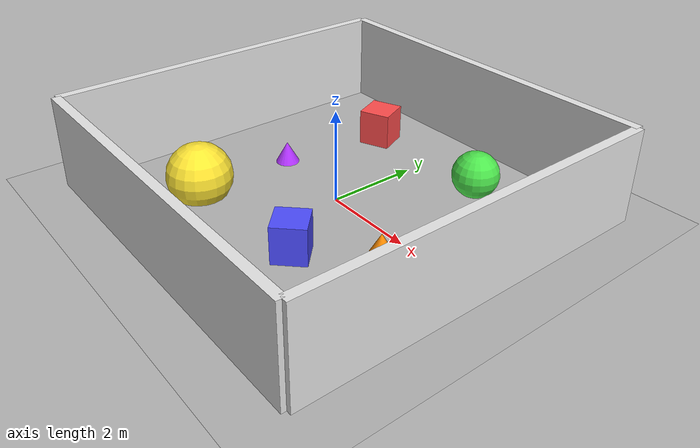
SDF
<?xml version="1.0" ?>
<sdf version="1.9">
<world name="simple_world">

  <physics name="1ms" type="ignored">
    <max_step_size>0.001</max_step_size>
    <real_time_factor>1.0</real_time_factor>
  </physics>

  <plugin filename="gz-sim-physics-system"
    name="gz::sim::systems::Physics"/>
  <plugin filename="gz-sim-user-commands-system"
    name="gz::sim::systems::UserCommands"/>
  <plugin filename="gz-sim-scene-broadcaster-system"
    name="gz::sim::systems::SceneBroadcaster"/>
  <plugin filename="gz-sim-contact-system"
    name="gz::sim::systems::Contact"/>
  <plugin filename="gz-sim-sensors-system"
    name="gz::sim::systems::Sensors">
    <render_engine>ogre2</render_engine>
  </plugin>

  <!-- ===== LIGHTING ===== -->
  <light name="sun" type="directional">
    <cast_shadows>false</cast_shadows>
    <pose>0 0 10 0 0 0</pose>
    <diffuse>0.9 0.9 0.9 1</diffuse>
    <specular>0.2 0.2 0.2 1</specular>
    <direction>0 0 -1</direction>
  </light>

  <!-- ===== GROUND PLANE ===== -->
  <model name="ground_plane">
    <static>true</static>
    <link name="link">
      <collision name="collision">
        <geometry>
          <plane>
            <normal>0 0 1</normal>
            <size>8 8</size>
          </plane>
        </geometry>
        <surface>
          <friction>
            <ode><mu>1</mu><mu2>1</mu2></ode>
          </friction>
        </surface>
      </collision>
      <visual name="visual">
        <geometry>
          <plane>
            <normal>0 0 1</normal>
            <size>8 8</size>
          </plane>
        </geometry>
        <material>
          <ambient>0.6 0.6 0.6 1</ambient>
          <diffuse>0.7 0.7 0.7 1</diffuse>
        </material>
      </visual>
    </link>
  </model>

  <!-- ===== OUTER WALLS (8x8 m room) ===== -->

  <!-- South wall -->
  <model name="wall_south">
    <static>true</static>
    <pose>0 -4 1.0 0 0 0</pose>
    <link name="link">
      <inertial><mass>1.0</mass><inertia><ixx>0.1</ixx><ixy>0</ixy><ixz>0</ixz><iyy>0.1</iyy><iyz>0</iyz><izz>0.1</izz></inertia></inertial>
      <collision name="collision">
        <geometry><box><size>8.0 0.2 2.0</size></box></geometry>
      </collision>
      <visual name="visual">
        <geometry><box><size>8.0 0.2 2.0</size></box></geometry>
        <material><ambient>0.8 0.8 0.8 1</ambient><diffuse>0.9 0.9 0.9 1</diffuse></material>
      </visual>
    </link>
  </model>

  <!-- North wall -->
  <model name="wall_north">
    <static>true</static>
    <pose>0 4 1.0 0 0 0</pose>
    <link name="link">
      <inertial><mass>1.0</mass><inertia><ixx>0.1</ixx><ixy>0</ixy><ixz>0</ixz><iyy>0.1</iyy><iyz>0</iyz><izz>0.1</izz></inertia></inertial>
      <collision name="collision">
        <geometry><box><size>8.0 0.2 2.0</size></box></geometry>
      </collision>
      <visual name="visual">
        <geometry><box><size>8.0 0.2 2.0</size></box></geometry>
        <material><ambient>0.8 0.8 0.8 1</ambient><diffuse>0.9 0.9 0.9 1</diffuse></material>
      </visual>
    </link>
  </model>

  <!-- West wall -->
  <model name="wall_west">
    <static>true</static>
    <pose>-4 0 1.0 0 0 0</pose>
    <link name="link">
      <inertial><mass>1.0</mass><inertia><ixx>0.1</ixx><ixy>0</ixy><ixz>0</ixz><iyy>0.1</iyy><iyz>0</iyz><izz>0.1</izz></inertia></inertial>
      <collision name="collision">
        <geometry><box><size>0.2 8.0 2.0</size></box></geometry>
      </collision>
      <visual name="visual">
        <geometry><box><size>0.2 8.0 2.0</size></box></geometry>
        <material><ambient>0.8 0.8 0.8 1</ambient><diffuse>0.9 0.9 0.9 1</diffuse></material>
      </visual>
    </link>
  </model>

  <!-- East wall -->
  <model name="wall_east">
    <static>true</static>
    <pose>4 0 1.0 0 0 0</pose>
    <link name="link">
      <inertial><mass>1.0</mass><inertia><ixx>0.1</ixx><ixy>0</ixy><ixz>0</ixz><iyy>0.1</iyy><iyz>0</iyz><izz>0.1</izz></inertia></inertial>
      <collision name="collision">
        <geometry><box><size>0.2 8.0 2.0</size></box></geometry>
      </collision>
      <visual name="visual">
        <geometry><box><size>0.2 8.0 2.0</size></box></geometry>
        <material><ambient>0.8 0.8 0.8 1</ambient><diffuse>0.9 0.9 0.9 1</diffuse></material>
      </visual>
    </link>
  </model>

  <!-- 1. CUBE — north-west, red -->
  <model name="cube_NW">
    <static>true</static>
    <pose>-1.5 2.5 0.4 0 0 0.4</pose>
    <link name="link">
      <inertial><mass>1.0</mass><inertia><ixx>0.1</ixx><ixy>0</ixy><ixz>0</ixz><iyy>0.1</iyy><iyz>0</iyz><izz>0.1</izz></inertia></inertial>
      <collision name="collision">
        <geometry><box><size>0.7 0.7 0.8</size></box></geometry>
      </collision>
      <visual name="visual">
        <geometry><box><size>0.7 0.7 0.8</size></box></geometry>
        <material><ambient>0.8 0.2 0.2 1</ambient><diffuse>1.0 0.3 0.3 1</diffuse></material>
      </visual>
    </link>
  </model>

  <!-- 2. SPHERE — north-east, green -->
  <model name="sphere_NE">
    <static>true</static>
    <pose>1.5 2.5 0.4 0 0 0</pose>
    <link name="link">
      <inertial><mass>1.0</mass><inertia><ixx>0.1</ixx><ixy>0</ixy><ixz>0</ixz><iyy>0.1</iyy><iyz>0</iyz><izz>0.1</izz></inertia></inertial>
      <collision name="collision">
        <geometry><sphere><radius>0.5</radius></sphere></geometry>
      </collision>
      <visual name="visual">
        <geometry><sphere><radius>0.5</radius></sphere></geometry>
        <material><ambient>0.2 0.7 0.2 1</ambient><diffuse>0.3 0.9 0.3 1</diffuse></material>
      </visual>
    </link>
  </model>

  <!-- 3. CONE — mid-east, orange -->
  <model name="cone_E">
    <static>true</static>
    <pose>2.0 -0.5 0.0 0 0 0</pose>
    <link name="link">
      <inertial><mass>1.0</mass><inertia><ixx>0.1</ixx><ixy>0</ixy><ixz>0</ixz><iyy>0.1</iyy><iyz>0</iyz><izz>0.1</izz></inertia></inertial>
      <collision name="collision">
        <geometry><cone><radius>0.5</radius><length>0.9</length></cone></geometry>
      </collision>
      <visual name="visual">
        <geometry><cone><radius>0.5</radius><length>0.9</length></cone></geometry>
        <material><ambient>0.9 0.4 0.0 1</ambient><diffuse>1.0 0.55 0.0 1</diffuse></material>
      </visual>
    </link>
  </model>

  <!-- 4. CUBE — south-east, blue -->
  <model name="cube_SE">
    <static>true</static>
    <pose>1.0 -1.8 0.4 0 0 0.8</pose>
    <link name="link">
      <inertial><mass>1.0</mass><inertia><ixx>0.1</ixx><ixy>0</ixy><ixz>0</ixz><iyy>0.1</iyy><iyz>0</iyz><izz>0.1</izz></inertia></inertial>
      <collision name="collision">
        <geometry><box><size>0.7 0.7 0.8</size></box></geometry>
      </collision>
      <visual name="visual">
        <geometry><box><size>0.7 0.7 0.8</size></box></geometry>
        <material><ambient>0.2 0.2 0.9 1</ambient><diffuse>0.3 0.3 1.0 1</diffuse></material>
      </visual>
    </link>
  </model>

  <!-- 5. SPHERE — south-west, yellow -->
  <model name="sphere_SW">
    <static>true</static>
    <pose>-2.0 -2.0 0.4 0 0 0</pose>
    <link name="link">
      <inertial><mass>1.0</mass><inertia><ixx>0.1</ixx><ixy>0</ixy><ixz>0</ixz><iyy>0.1</iyy><iyz>0</iyz><izz>0.1</izz></inertia></inertial>
      <collision name="collision">
        <geometry><sphere><radius>0.7</radius></sphere></geometry>
      </collision>
      <visual name="visual">
        <geometry><sphere><radius>0.7</radius></sphere></geometry>
        <material><ambient>0.9 0.8 0.1 1</ambient><diffuse>1.0 0.9 0.2 1</diffuse></material>
      </visual>
    </link>
  </model>

  <!-- 6. CONE — mid-west, purple -->
  <model name="cone_W">
    <static>true</static>
    <pose>-2.0 0.2 0.0 0 0 0</pose>
    <link name="link">
      <inertial><mass>1.0</mass><inertia><ixx>0.1</ixx><ixy>0</ixy><ixz>0</ixz><iyy>0.1</iyy><iyz>0</iyz><izz>0.1</izz></inertia></inertial>
      <collision name="collision">
        <geometry><cone><radius>0.5</radius><length>0.9</length></cone></geometry>
      </collision>
      <visual name="visual">
        <geometry><cone><radius>0.5</radius><length>0.9</length></cone></geometry>
        <material><ambient>0.5 0.1 0.8 1</ambient><diffuse>0.7 0.2 1.0 1</diffuse></material>
      </visual>
    </link>
  </model>

</world>
</sdf>
